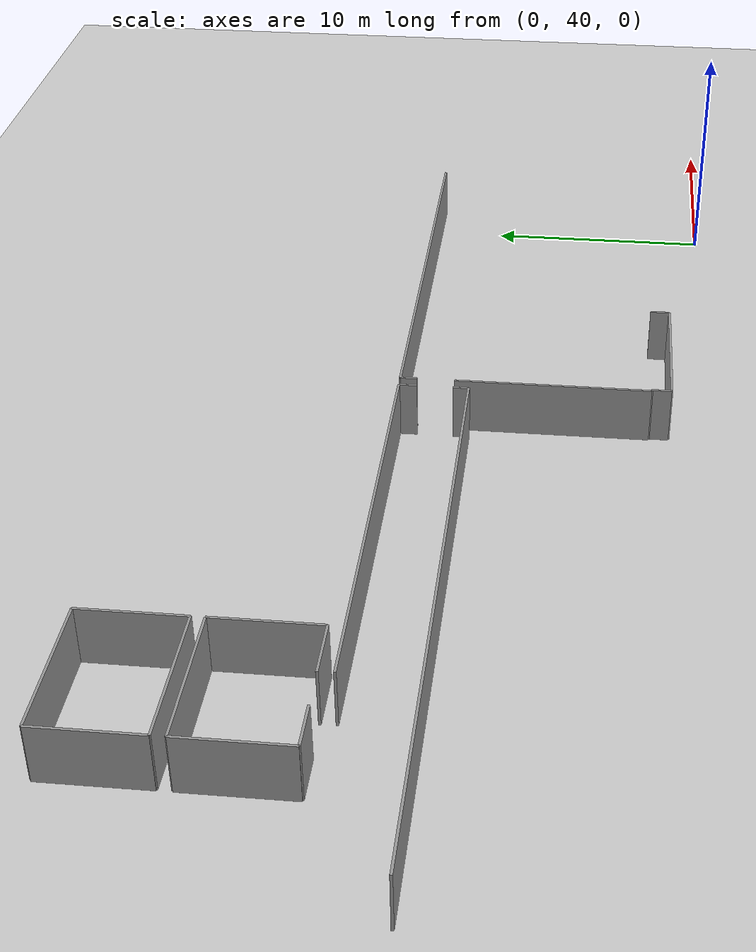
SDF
<sdf version="1.6">
 <world name="default">
  <model name="ground_plane">
   <static>1</static>
   <link name="link">
    <collision name="collision">
     <geometry><plane><normal>0 0 1</normal><size>100 100</size></plane></geometry>
     <surface><friction><ode><mu>100</mu><mu2>50</mu2></ode></friction></surface>
    </collision>
    <visual name="visual">
     <cast_shadows>0</cast_shadows>
     <geometry><plane><normal>0 0 1</normal><size>100 100</size></plane></geometry>
     <material>
      <script><uri>file://media/materials/scripts/gazebo.material</uri><name>Gazebo/Grey</name></script>
     </material>
    </visual>
   </link>
  </model>
  <model name="0510035518_A_40_1_101">
   <static>1</static>
   <link name="Wall_44">
    <collision name="Wall_44_Collision">
     <geometry><box><size>17.645220705 0.1 2.5</size></box></geometry>
     <pose>8.82261035249 0 1.25 0 0 0</pose>
    </collision>
    <visual name="Wall_44_Visual">
     <pose>8.82261035249 0 1.25 0 0 0</pose>
     <geometry><box><size>17.645220705 0.1 2.5</size></box></geometry>
     <material>
      <script><uri>file://media/materials/scripts/gazebo.material</uri><name>Gazebo/Grey</name></script>
      <ambient>1 1 1 1</ambient>
     </material>
    </visual>
    <pose>80.9636074944 -15.5472848523 0 0 0 0.0</pose>
   </link>
   <link name="Wall_45">
    <collision name="Wall_45_Collision">
     <geometry><box><size>0.773832962845 0.1 2.5</size></box></geometry>
     <pose>0.386916481423 0 1.25 0 0 0</pose>
    </collision>
    <visual name="Wall_45_Visual">
     <pose>0.386916481423 0 1.25 0 0 0</pose>
     <geometry><box><size>0.773832962845 0.1 2.5</size></box></geometry>
     <material>
      <script><uri>file://media/materials/scripts/gazebo.material</uri><name>Gazebo/Grey</name></script>
      <ambient>1 1 1 1</ambient>
     </material>
    </visual>
    <pose>98.6088281994 -15.5472848523 0 0 0 -1.57079632679</pose>
   </link>
   <link name="Wall_46">
    <collision name="Wall_46_Collision">
     <geometry><box><size>0.65900285805 0.1 2.5</size></box></geometry>
     <pose>0.329501429025 0 1.25 0 0 0</pose>
    </collision>
    <visual name="Wall_46_Visual">
     <pose>0.329501429025 0 1.25 0 0 0</pose>
     <geometry><box><size>0.65900285805 0.1 2.5</size></box></geometry>
     <material>
      <script><uri>file://media/materials/scripts/gazebo.material</uri><name>Gazebo/Grey</name></script>
      <ambient>1 1 1 1</ambient>
     </material>
    </visual>
    <pose>98.6088281994 -17.8476976818 0 0 0 -1.57079632679</pose>
   </link>
   <link name="Wall_47">
    <collision name="Wall_47_Collision">
     <geometry><box><size>25.977516672 0.1 2.5</size></box></geometry>
     <pose>12.988758336 0 1.25 0 0 0</pose>
    </collision>
    <visual name="Wall_47_Visual">
     <pose>12.988758336 0 1.25 0 0 0</pose>
     <geometry><box><size>25.977516672 0.1 2.5</size></box></geometry>
     <material>
      <script><uri>file://media/materials/scripts/gazebo.material</uri><name>Gazebo/Grey</name></script>
      <ambient>1 1 1 1</ambient>
     </material>
    </visual>
    <pose>98.6088281994 -18.5067005399 0 0 0 3.14159265359</pose>
   </link>
   <link name="Wall_50">
    <collision name="Wall_50_Collision">
     <geometry><box><size>4.31832327723 0.1 2.5</size></box></geometry>
     <pose>2.15916163862 0 1.25 0 0 0</pose>
    </collision>
    <visual name="Wall_50_Visual">
     <pose>2.15916163862 0 1.25 0 0 0</pose>
     <geometry><box><size>4.31832327723 0.1 2.5</size></box></geometry>
     <material>
      <script><uri>file://media/materials/scripts/gazebo.material</uri><name>Gazebo/Grey</name></script>
      <ambient>1 1 1 1</ambient>
     </material>
    </visual>
    <pose>77.4905049222 -14.939599873 0 0 0 1.57079632679</pose>
   </link>
   <link name="Wall_51">
    <collision name="Wall_51_Collision">
     <geometry><box><size>5.7841854557 0.1 2.5</size></box></geometry>
     <pose>2.89209272785 0 1.25 0 0 0</pose>
    </collision>
    <visual name="Wall_51_Visual">
     <pose>2.89209272785 0 1.25 0 0 0</pose>
     <geometry><box><size>5.7841854557 0.1 2.5</size></box></geometry>
     <material>
      <script><uri>file://media/materials/scripts/gazebo.material</uri><name>Gazebo/Grey</name></script>
      <ambient>1 1 1 1</ambient>
     </material>
    </visual>
    <pose>77.4905049222 -10.6212765957 0 0 0 0.0</pose>
   </link>
   <link name="Wall_52">
    <collision name="Wall_52_Collision">
     <geometry><box><size>4.31832327723 0.1 2.5</size></box></geometry>
     <pose>2.15916163862 0 1.25 0 0 0</pose>
    </collision>
    <visual name="Wall_52_Visual">
     <pose>2.15916163862 0 1.25 0 0 0</pose>
     <geometry><box><size>4.31832327723 0.1 2.5</size></box></geometry>
     <material>
      <script><uri>file://media/materials/scripts/gazebo.material</uri><name>Gazebo/Grey</name></script>
      <ambient>1 1 1 1</ambient>
     </material>
    </visual>
    <pose>83.2746903779 -10.6212765957 0 0 0 -1.57079632679</pose>
   </link>
   <link name="Wall_53">
    <collision name="Wall_53_Collision">
     <geometry><box><size>2.33852016513 0.1 2.5</size></box></geometry>
     <pose>1.16926008257 0 1.25 0 0 0</pose>
    </collision>
    <visual name="Wall_53_Visual">
     <pose>1.16926008257 0 1.25 0 0 0</pose>
     <geometry><box><size>2.33852016513 0.1 2.5</size></box></geometry>
     <material>
      <script><uri>file://media/materials/scripts/gazebo.material</uri><name>Gazebo/Grey</name></script>
      <ambient>1 1 1 1</ambient>
     </material>
    </visual>
    <pose>83.2746903779 -14.939599873 0 0 0 3.14159265359</pose>
   </link>
   <link name="Wall_54">
    <collision name="Wall_54_Collision">
     <geometry><box><size>1.84236265481 0.1 2.5</size></box></geometry>
     <pose>0.921181327406 0 1.25 0 0 0</pose>
    </collision>
    <visual name="Wall_54_Visual">
     <pose>0.921181327406 0 1.25 0 0 0</pose>
     <geometry><box><size>1.84236265481 0.1 2.5</size></box></geometry>
     <material>
      <script><uri>file://media/materials/scripts/gazebo.material</uri><name>Gazebo/Grey</name></script>
      <ambient>1 1 1 1</ambient>
     </material>
    </visual>
    <pose>79.332867577 -14.939599873 0 0 0 3.14159265359</pose>
   </link>
   <link name="Wall_55">
    <collision name="Wall_55_Collision">
     <geometry><box><size>4.2245792315 0.1 2.5</size></box></geometry>
     <pose>2.11228961575 0 1.25 0 0 0</pose>
    </collision>
    <visual name="Wall_55_Visual">
     <pose>2.11228961575 0 1.25 0 0 0</pose>
     <geometry><box><size>4.2245792315 0.1 2.5</size></box></geometry>
     <material>
      <script><uri>file://media/materials/scripts/gazebo.material</uri><name>Gazebo/Grey</name></script>
      <ambient>1 1 1 1</ambient>
     </material>
    </visual>
    <pose>77.488472531 -10.0669418863 0 0 0 1.57079632679</pose>
   </link>
   <link name="Wall_56">
    <collision name="Wall_56_Collision">
     <geometry><box><size>5.78291521118 0.1 2.5</size></box></geometry>
     <pose>2.89145760559 0 1.25 0 0 0</pose>
    </collision>
    <visual name="Wall_56_Visual">
     <pose>2.89145760559 0 1.25 0 0 0</pose>
     <geometry><box><size>5.78291521118 0.1 2.5</size></box></geometry>
     <material>
      <script><uri>file://media/materials/scripts/gazebo.material</uri><name>Gazebo/Grey</name></script>
      <ambient>1 1 1 1</ambient>
     </material>
    </visual>
    <pose>77.488472531 -5.84236265481 0 0 0 0.0</pose>
   </link>
   <link name="Wall_57">
    <collision name="Wall_57_Collision">
     <geometry><box><size>4.24490314386 0.1 2.5</size></box></geometry>
     <pose>2.12245157193 0 1.25 0 0 0</pose>
    </collision>
    <visual name="Wall_57_Visual">
     <pose>2.12245157193 0 1.25 0 0 0</pose>
     <geometry><box><size>4.24490314386 0.1 2.5</size></box></geometry>
     <material>
      <script><uri>file://media/materials/scripts/gazebo.material</uri><name>Gazebo/Grey</name></script>
      <ambient>1 1 1 1</ambient>
     </material>
    </visual>
    <pose>83.2713877421 -5.84236265481 0 0 0 -1.57079632679</pose>
   </link>
   <link name="Wall_58">
    <collision name="Wall_58_Collision">
     <geometry><box><size>5.78295092501 0.1 2.5</size></box></geometry>
     <pose>2.89147546251 0 1.25 0 0 0</pose>
    </collision>
    <visual name="Wall_58_Visual">
     <pose>2.89147546251 0 1.25 0 0 0</pose>
     <geometry><box><size>5.78295092501 0.1 2.5</size></box></geometry>
     <material>
      <script><uri>file://media/materials/scripts/gazebo.material</uri><name>Gazebo/Grey</name></script>
      <ambient>1 1 1 1</ambient>
     </material>
    </visual>
    <pose>83.2713877421 -10.0872657987 0 0 0 3.13807819281</pose>
   </link>
   <link name="Wall_59">
    <collision name="Wall_59_Collision">
     <geometry><box><size>0.837599237853 0.1 2.5</size></box></geometry>
     <pose>0.418799618927 0 1.25 0 0 0</pose>
    </collision>
    <visual name="Wall_59_Visual">
     <pose>0.418799618927 0 1.25 0 0 0</pose>
     <geometry><box><size>0.837599237853 0.1 2.5</size></box></geometry>
     <material>
      <script><uri>file://media/materials/scripts/gazebo.material</uri><name>Gazebo/Grey</name></script>
      <ambient>1 1 1 1</ambient>
     </material>
    </visual>
    <pose>99.2127024452 -27.0318196253 0 0 0 1.57079632679</pose>
   </link>
   <link name="Wall_60">
    <collision name="Wall_60_Collision">
     <geometry><box><size>0.0721498888536 0.1 2.5</size></box></geometry>
     <pose>0.0360749444268 0 1.25 0 0 0</pose>
    </collision>
    <visual name="Wall_60_Visual">
     <pose>0.0360749444268 0 1.25 0 0 0</pose>
     <geometry><box><size>0.0721498888536 0.1 2.5</size></box></geometry>
     <material>
      <script><uri>file://media/materials/scripts/gazebo.material</uri><name>Gazebo/Grey</name></script>
      <ambient>1 1 1 1</ambient>
     </material>
    </visual>
    <pose>99.2127024452 -26.1942203874 0 0 0 3.14159265359</pose>
   </link>
   <link name="Wall_61">
    <collision name="Wall_61_Collision">
     <geometry><box><size>8.33000952683 0.1 2.5</size></box></geometry>
     <pose>4.16500476342 0 1.25 0 0 0</pose>
    </collision>
    <visual name="Wall_61_Visual">
     <pose>4.16500476342 0 1.25 0 0 0</pose>
     <geometry><box><size>8.33000952683 0.1 2.5</size></box></geometry>
     <material>
      <script><uri>file://media/materials/scripts/gazebo.material</uri><name>Gazebo/Grey</name></script>
      <ambient>1 1 1 1</ambient>
     </material>
    </visual>
    <pose>99.1405525564 -26.1942203874 0 0 0 1.57079632679</pose>
   </link>
   <link name="Wall_62">
    <collision name="Wall_62_Collision">
     <geometry><box><size>0.722006986345 0.1 2.5</size></box></geometry>
     <pose>0.361003493172 0 1.25 0 0 0</pose>
    </collision>
    <visual name="Wall_62_Visual">
     <pose>0.361003493172 0 1.25 0 0 0</pose>
     <geometry><box><size>0.722006986345 0.1 2.5</size></box></geometry>
     <material>
      <script><uri>file://media/materials/scripts/gazebo.material</uri><name>Gazebo/Grey</name></script>
      <ambient>1 1 1 1</ambient>
     </material>
    </visual>
    <pose>99.1405525564 -16.2667513496 0 0 0 1.57079632679</pose>
   </link>
   <link name="Wall_63">
    <collision name="Wall_63_Collision">
     <geometry><box><size>19.707589711 0.1 2.5</size></box></geometry>
     <pose>9.85379485551 0 1.25 0 0 0</pose>
    </collision>
    <visual name="Wall_63_Visual">
     <pose>9.85379485551 0 1.25 0 0 0</pose>
     <geometry><box><size>19.707589711 0.1 2.5</size></box></geometry>
     <material>
      <script><uri>file://media/materials/scripts/gazebo.material</uri><name>Gazebo/Grey</name></script>
      <ambient>1 1 1 1</ambient>
     </material>
    </visual>
    <pose>99.1405525564 -15.5447443633 0 0 0 0.0</pose>
   </link>
   <link name="Wall_83">
    <collision name="Wall_83_Collision">
     <geometry><box><size>0.85411241664 0.1 2.5</size></box></geometry>
     <pose>0.42705620832 0 1.25 0 0 0</pose>
    </collision>
    <visual name="Wall_83_Visual">
     <pose>0.42705620832 0 1.25 0 0 0</pose>
     <geometry><box><size>0.85411241664 0.1 2.5</size></box></geometry>
     <material>
      <script><uri>file://media/materials/scripts/gazebo.material</uri><name>Gazebo/Grey</name></script>
      <ambient>1 1 1 1</ambient>
     </material>
    </visual>
    <pose>105.645982852 -26.1573832963 0 0 0 -1.57079632679</pose>
   </link>
   <link name="Wall_84">
    <collision name="Wall_84_Collision">
     <geometry><box><size>6.43331250988 0.1 2.5</size></box></geometry>
     <pose>3.21665625494 0 1.25 0 0 0</pose>
    </collision>
    <visual name="Wall_84_Visual">
     <pose>3.21665625494 0 1.25 0 0 0</pose>
     <geometry><box><size>6.43331250988 0.1 2.5</size></box></geometry>
     <material>
      <script><uri>file://media/materials/scripts/gazebo.material</uri><name>Gazebo/Grey</name></script>
      <ambient>1 1 1 1</ambient>
     </material>
    </visual>
    <pose>105.645982852 -27.0114957129 0 0 0 -3.13843348075</pose>
   </link>
   <pose>-116.8 68.630612893 0 0 0 0</pose>
  </model>
 </world>
</sdf>
